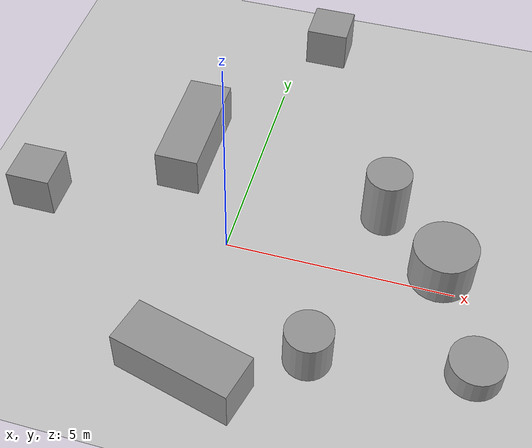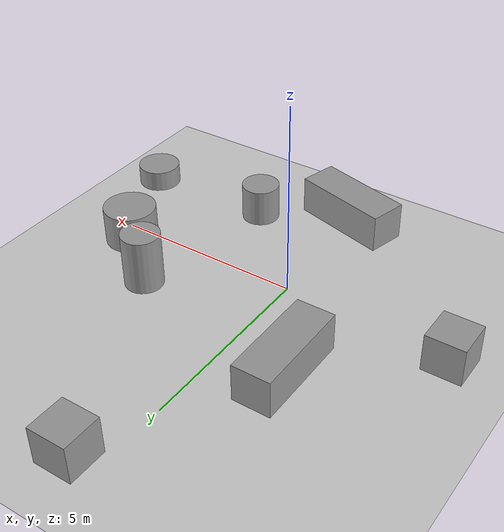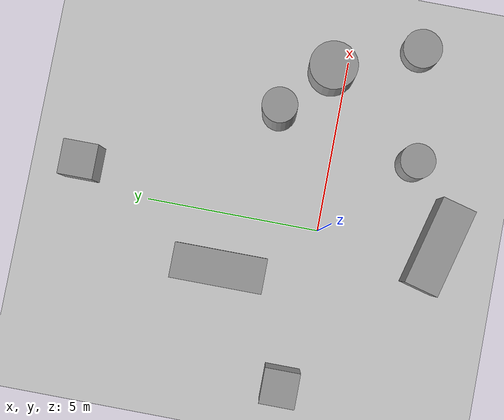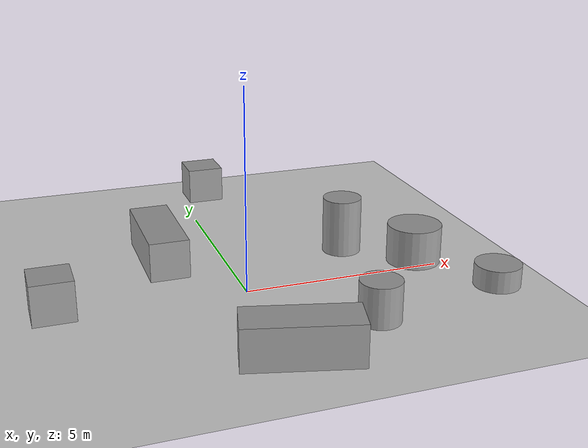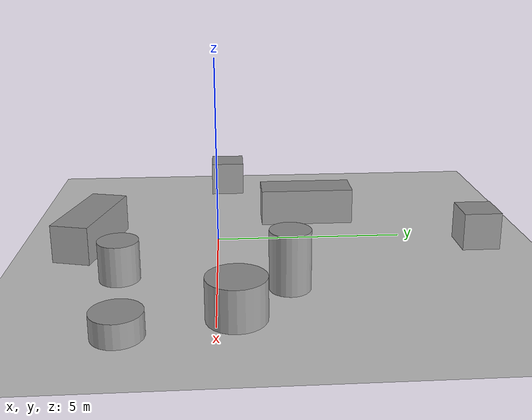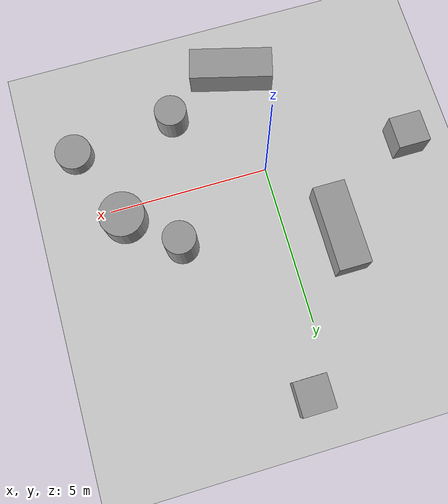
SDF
<sdf version="1.7">
 <world name="default">
  <light name="sun" type="directional">
   <pose>0 0 10 0 -0 0</pose>
   <diffuse>0.8 0.8 0.8 1</diffuse>
   <specular>0.2 0.2 0.2 1</specular>
   <attenuation>
    <range>1000</range>
    <constant>0.9</constant>
    <linear>0.01</linear>
    <quadratic>0.001</quadratic>
   </attenuation>
   <direction>-0.5 0.1 -0.9</direction>
   <spot><inner_angle>0</inner_angle><outer_angle>0</outer_angle><falloff>0</falloff></spot>
  </light>
  <model name="ground_plane">
   <static>1</static>
   <link name="link">
    <collision name="collision">
     <geometry><plane><normal>0 0 1</normal><size>100 100</size></plane></geometry>
     <surface><friction><ode><mu>100</mu><mu2>50</mu2></ode></friction></surface>
    </collision>
    <visual name="visual">
     <cast_shadows>0</cast_shadows>
     <geometry><plane><normal>0 0 1</normal><size>100 100</size></plane></geometry>
     <material>
      <script><uri>file://media/materials/scripts/gazebo.material</uri><name>Gazebo/Grey</name></script>
     </material>
    </visual>
   </link>
  </model>
  <gravity>0 0 -9.8</gravity>
  <magnetic_field>6e-06 2.3e-05 -4.2e-05</magnetic_field>
  <atmosphere type="adiabatic"/>
  <physics type="ode">
   <max_step_size>0.001</max_step_size>
   <real_time_factor>1</real_time_factor>
   <real_time_update_rate>1000</real_time_update_rate>
  </physics>
  <scene><ambient>0.4 0.4 0.4 1</ambient><background>0.7 0.7 0.7 1</background><shadows>1</shadows></scene>
  <audio><device>default</device></audio>
  <spherical_coordinates>
   <surface_model>EARTH_WGS84</surface_model>
   <latitude_deg>0</latitude_deg>
   <longitude_deg>0</longitude_deg>
   <elevation>0</elevation>
   <heading_deg>0</heading_deg>
  </spherical_coordinates>
  <model name="unit_box">
   <pose>-1.56195 2.56954 0.499995 -1e-05 -0 -0</pose>
   <link name="link">
    <inertial>
     <mass>1</mass>
     <inertia>
      <ixx>0.166667</ixx>
      <ixy>0</ixy>
      <ixz>0</ixz>
      <iyy>0.166667</iyy>
      <iyz>0</iyz>
      <izz>0.166667</izz>
     </inertia>
    </inertial>
    <collision name="collision"><geometry><box><size>1 2.61518 1</size></box></geometry></collision>
    <visual name="visual">
     <geometry><box><size>1 2.61518 1</size></box></geometry>
     <material>
      <script><name>Gazebo/Grey</name><uri>file://media/materials/scripts/gazebo.material</uri></script>
     </material>
    </visual>
   </link>
  </model>
  <model name="unit_cylinder">
   <pose>3.14798 1.71637 0.499998 3e-06 4e-06 -0</pose>
   <link name="link">
    <inertial>
     <mass>1</mass>
     <inertia><ixx>0.145833</ixx><ixy>0</ixy><ixz>0</ixz><iyy>0.145833</iyy><iyz>0</iyz><izz>0.125</izz></inertia>
    </inertial>
    <collision name="collision">
     <geometry><cylinder><radius>0.5</radius><length>1.91345</length></cylinder></geometry>
    </collision>
    <visual name="visual">
     <geometry><cylinder><radius>0.5</radius><length>1.91345</length></cylinder></geometry>
     <material>
      <script><name>Gazebo/Grey</name><uri>file://media/materials/scripts/gazebo.material</uri></script>
     </material>
    </visual>
   </link>
  </model>
  <model name="unit_cylinder_0">
   <pose>4.6223 0.438541 0.499993 -3e-06 -4e-06 -0</pose>
   <link name="link">
    <inertial>
     <mass>1</mass>
     <inertia><ixx>0.145833</ixx><ixy>0</ixy><ixz>0</ixz><iyy>0.145833</iyy><iyz>0</iyz><izz>0.125</izz></inertia>
    </inertial>
    <collision name="collision">
     <geometry><cylinder><radius>0.691355</radius><length>1</length></cylinder></geometry>
    </collision>
    <visual name="visual">
     <geometry><cylinder><radius>0.691355</radius><length>1</length></cylinder></geometry>
     <material>
      <script><name>Gazebo/Grey</name><uri>file://media/materials/scripts/gazebo.material</uri></script>
     </material>
    </visual>
   </link>
  </model>
  <model name="unit_box_0">
   <pose>-4.50268 0.286675 0.499995 0 1e-05 0</pose>
   <link name="link">
    <inertial>
     <mass>1</mass>
     <inertia>
      <ixx>0.166667</ixx>
      <ixy>0</ixy>
      <ixz>0</ixz>
      <iyy>0.166667</iyy>
      <iyz>0</iyz>
      <izz>0.166667</izz>
     </inertia>
    </inertial>
    <collision name="collision"><geometry><box><size>1 1 1</size></box></geometry></collision>
    <visual name="visual">
     <geometry><box><size>1 1 1</size></box></geometry>
     <material>
      <script><name>Gazebo/Grey</name><uri>file://media/materials/scripts/gazebo.material</uri></script>
     </material>
    </visual>
   </link>
  </model>
  <model name="unit_box_1">
   <pose>0.700286 6.98975 0.499995 -1e-05 -0 0</pose>
   <link name="link">
    <inertial>
     <mass>1</mass>
     <inertia>
      <ixx>0.166667</ixx>
      <ixy>0</ixy>
      <ixz>0</ixz>
      <iyy>0.166667</iyy>
      <iyz>0</iyz>
      <izz>0.166667</izz>
     </inertia>
    </inertial>
    <collision name="collision"><geometry><box><size>1 1 1</size></box></geometry></collision>
    <visual name="visual">
     <geometry><box><size>1 1 1</size></box></geometry>
     <material>
      <script><name>Gazebo/Grey</name><uri>file://media/materials/scripts/gazebo.material</uri></script>
     </material>
    </visual>
   </link>
  </model>
  <model name="unit_cylinder_1">
   <pose>2.39163 -2.35601 0.499997 3e-06 4e-06 -0</pose>
   <link name="link">
    <inertial>
     <mass>1</mass>
     <inertia><ixx>0.145833</ixx><ixy>0</ixy><ixz>0</ixz><iyy>0.145833</iyy><iyz>0</iyz><izz>0.125</izz></inertia>
    </inertial>
    <collision name="collision">
     <geometry><cylinder><radius>0.5</radius><length>1</length></cylinder></geometry>
    </collision>
    <visual name="visual">
     <geometry><cylinder><radius>0.5</radius><length>1</length></cylinder></geometry>
     <material>
      <script><name>Gazebo/Grey</name><uri>file://media/materials/scripts/gazebo.material</uri></script>
     </material>
    </visual>
   </link>
  </model>
  <model name="unit_box_clone">
   <pose>0.148709 -3.39066 0.5 0 0 -1.82625</pose>
   <link name="link">
    <inertial>
     <mass>1</mass>
     <inertia>
      <ixx>0.166667</ixx>
      <ixy>0</ixy>
      <ixz>0</ixz>
      <iyy>0.166667</iyy>
      <iyz>0</iyz>
      <izz>0.166667</izz>
     </inertia>
    </inertial>
    <collision name="collision"><geometry><box><size>1 2.61518 1</size></box></geometry></collision>
    <visual name="visual">
     <geometry><box><size>1 2.61518 1</size></box></geometry>
     <material>
      <script><name>Gazebo/Grey</name><uri>file://media/materials/scripts/gazebo.material</uri></script>
     </material>
    </visual>
   </link>
  </model>
  <model name="unit_cylinder_clone">
   <pose>5.60519 -1.96753 0.5 0 -0 0</pose>
   <link name="link">
    <inertial>
     <mass>1</mass>
     <inertia><ixx>0.145833</ixx><ixy>0</ixy><ixz>0</ixz><iyy>0.145833</iyy><iyz>0</iyz><izz>0.125</izz></inertia>
    </inertial>
    <collision name="collision">
     <geometry><cylinder><radius>0.562109</radius><length>0.551768</length></cylinder></geometry>
    </collision>
    <visual name="visual">
     <geometry><cylinder><radius>0.562109</radius><length>0.551768</length></cylinder></geometry>
     <material>
      <script><name>Gazebo/Grey</name><uri>file://media/materials/scripts/gazebo.material</uri></script>
     </material>
    </visual>
   </link>
  </model>
 </world>
</sdf>
